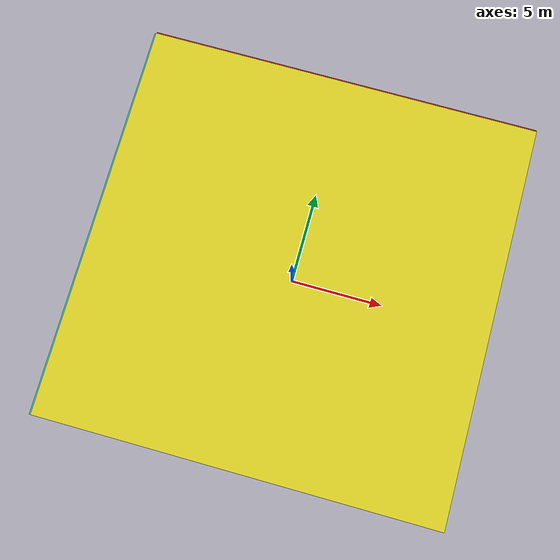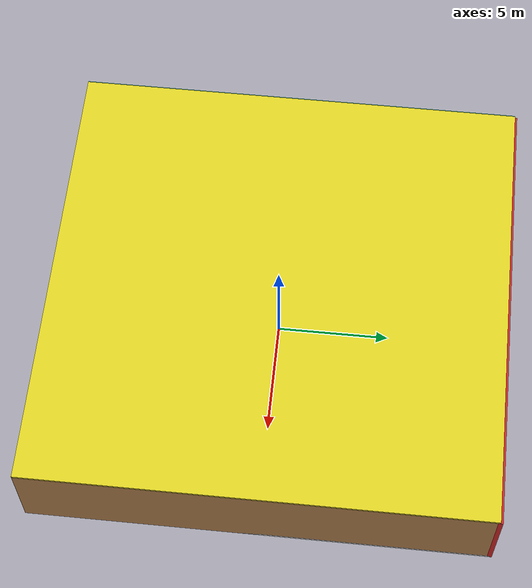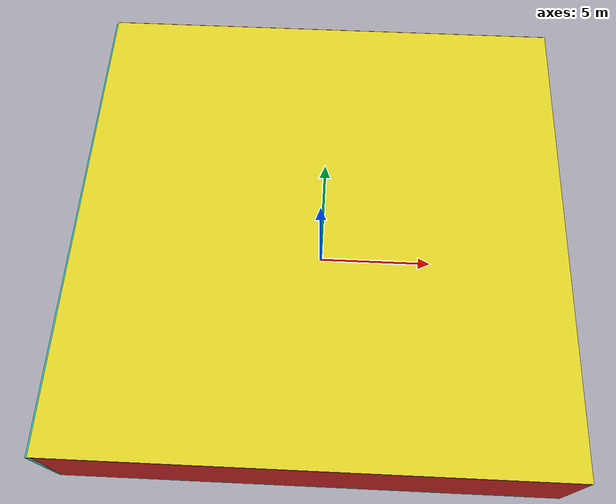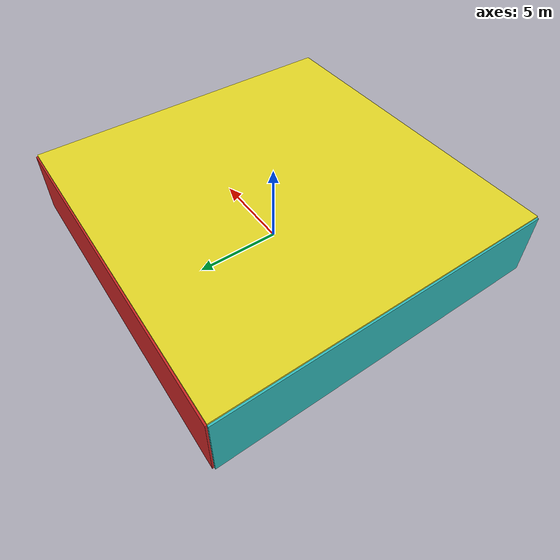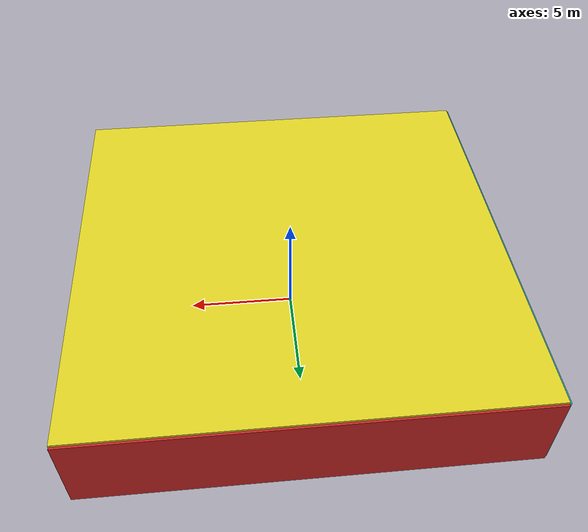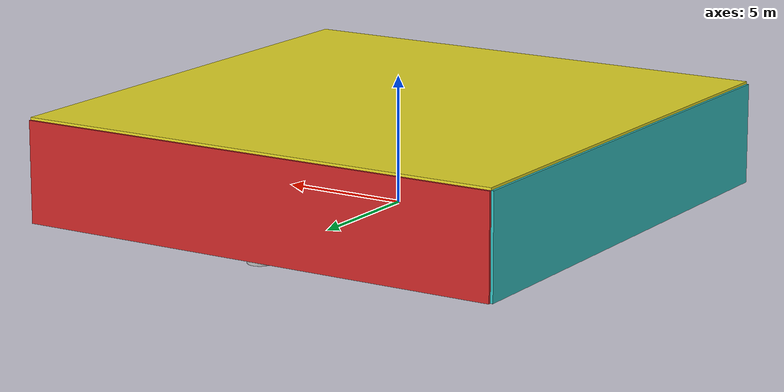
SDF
<sdf version="1.4">
 <world name="default">
  <physics type="ode">
   <max_step_size>0.001</max_step_size>
   <real_time_factor>1</real_time_factor>
   <real_time_update_rate>1000</real_time_update_rate>
   <gravity>0 0 -9.8</gravity>
  </physics>
  <scene><ambient>0.4 0.4 0.4 1</ambient><background>0.7 0.7 0.7 1</background><shadows>1</shadows></scene>
  <model name="Surrounding">
   <static>1</static>
   <link name="Ceiling">
    <collision name="Ceiling_Collision"><geometry><box><size>20 20 0.1</size></box></geometry></collision>
    <visual name="Ceiling_Visual">
     <geometry><box><size>20 20 0.1</size></box></geometry>
     <material>
      <script><uri>file://media/materials/scripts/gazebo.material</uri><name>Gazebo/Yellow</name></script>
     </material>
    </visual>
    <pose>0 0 4.05 0 0 0</pose>
   </link>
   <link name="Wall_South">
    <collision name="Wall_South_Collision">
     <geometry><box><size>20 0 4</size></box></geometry>
     <pose>0 0 2 0 -0 0</pose>
    </collision>
    <visual name="Wall_South_Visual">
     <pose>0 0 2 0 -0 0</pose>
     <geometry><box><size>20 0 4</size></box></geometry>
     <material>
      <script><uri>file://media/materials/scripts/gazebo.material</uri><name>Gazebo/Red</name></script>
     </material>
    </visual>
    <velocity_decay><linear>0</linear><angular>0</angular></velocity_decay>
    <pose>0 -10 0 0 -0 0</pose>
   </link>
   <link name="Wall_East">
    <collision name="Wall_21_Collision">
     <geometry><box><size>20 0 4</size></box></geometry>
     <pose>0 0 2 0 -0 0</pose>
    </collision>
    <visual name="Wall_21_Visual">
     <pose>0 0 2 0 -0 0</pose>
     <geometry><box><size>20 0 4</size></box></geometry>
     <material>
      <script><uri>file://media/materials/scripts/gazebo.material</uri><name>Gazebo/WoodFloor</name></script>
     </material>
    </visual>
    <velocity_decay><linear>0</linear><angular>0</angular></velocity_decay>
    <pose>10 0 0 0 -0 1.5708</pose>
   </link>
   <link name="Wall_North">
    <collision name="Wall_22_Collision">
     <geometry><box><size>20 0.2 4</size></box></geometry>
     <pose>0 0 2 0 -0 0</pose>
    </collision>
    <visual name="Wall_22_Visual">
     <pose>0 0 2 0 -0 0</pose>
     <geometry><box><size>20 0.2 4</size></box></geometry>
     <material>
      <script><uri>file://media/materials/scripts/gazebo.material</uri><name>Gazebo/Red</name></script>
     </material>
    </visual>
    <velocity_decay><linear>0</linear><angular>0</angular></velocity_decay>
    <pose>0 10 0 0 -0 0</pose>
   </link>
   <link name="Wall_West">
    <collision name="Wall_23_Collision">
     <geometry><box><size>20 0.2 4</size></box></geometry>
     <pose>0 0 2 0 -0 0</pose>
    </collision>
    <visual name="Wall_23_Visual">
     <pose>0 0 2 0 -0 0</pose>
     <geometry><box><size>20 0.2 4</size></box></geometry>
     <material>
      <script>
       <uri>file://media/materials/scripts/gazebo.material</uri>
       <name>Gazebo/TurquoiseGlowOutline</name>
      </script>
     </material>
    </visual>
    <velocity_decay><linear>0</linear><angular>0</angular></velocity_decay>
    <pose>-10 0 0 0 0 -1.5708</pose>
   </link>
   <link name="Ground_link">
    <collision name="collision">
     <pose>0 0 .05 0 -0 0</pose>
     <geometry><box><size>20 20 0.1</size></box></geometry>
    </collision>
    <visual name="visual">
     <pose>0 0 .05 0 -0 0</pose>
     <geometry><box><size>20 20 0.1</size></box></geometry>
     <material>
      <script><uri>file://media/materials/scripts/gazebo.material</uri><name>Gazebo/WhiteGlow</name></script>
     </material>
    </visual>
   </link>
   <static>1</static>
  </model>
  <spherical_coordinates>
   <surface_model>EARTH_WGS84</surface_model>
   <latitude_deg>0</latitude_deg>
   <longitude_deg>0</longitude_deg>
   <elevation>0</elevation>
   <heading_deg>0</heading_deg>
  </spherical_coordinates>
  <light name="lightball_0" type="diffuse">
   <diffuse>0.8 0.8 0.8 1</diffuse>
   <specular>0.2 0.2 0.2 1</specular>
   <attenuation>
    <range>100</range>
    <constant>0.7</constant>
    <linear>0.01</linear>
    <quadratic>0.001</quadratic>
   </attenuation>
   <direction>-0.5 0.1 -0.9</direction>
   <pose>-1.59557335642 7.66441475572 3.23732630202 0 0 0</pose>
  </light>
  <light name="lightball_1" type="diffuse">
   <diffuse>0.8 0.8 0.8 1</diffuse>
   <specular>0.2 0.2 0.2 1</specular>
   <attenuation>
    <range>100</range>
    <constant>0.7</constant>
    <linear>0.01</linear>
    <quadratic>0.001</quadratic>
   </attenuation>
   <direction>-0.5 0.1 -0.9</direction>
   <pose>0.718485458176 7.52692483345 2.63551763962 0 0 0</pose>
  </light>
  <light name="lightball_2" type="diffuse">
   <diffuse>0.8 0.8 0.8 1</diffuse>
   <specular>0.2 0.2 0.2 1</specular>
   <attenuation>
    <range>100</range>
    <constant>0.7</constant>
    <linear>0.01</linear>
    <quadratic>0.001</quadratic>
   </attenuation>
   <direction>-0.5 0.1 -0.9</direction>
   <pose>6.55870975963 9.4056015113 1.38016267597 0 0 0</pose>
  </light>
  <light name="lightball_3" type="diffuse">
   <diffuse>0.8 0.8 0.8 1</diffuse>
   <specular>0.2 0.2 0.2 1</specular>
   <attenuation>
    <range>100</range>
    <constant>0.7</constant>
    <linear>0.01</linear>
    <quadratic>0.001</quadratic>
   </attenuation>
   <direction>-0.5 0.1 -0.9</direction>
   <pose>-9.94366450045 -3.50051699491 3.38870884106 0 0 0</pose>
  </light>
  <light name="lightball_4" type="diffuse">
   <diffuse>0.8 0.8 0.8 1</diffuse>
   <specular>0.2 0.2 0.2 1</specular>
   <attenuation>
    <range>100</range>
    <constant>0.7</constant>
    <linear>0.01</linear>
    <quadratic>0.001</quadratic>
   </attenuation>
   <direction>-0.5 0.1 -0.9</direction>
   <pose>2.5499889625 3.0130521896 0.826024151192 0 0 0</pose>
  </light>
  <light name="lightball_5" type="diffuse">
   <diffuse>0.8 0.8 0.8 1</diffuse>
   <specular>0.2 0.2 0.2 1</specular>
   <attenuation>
    <range>100</range>
    <constant>0.7</constant>
    <linear>0.01</linear>
    <quadratic>0.001</quadratic>
   </attenuation>
   <direction>-0.5 0.1 -0.9</direction>
   <pose>7.13287675149 8.88391257537 0.804283072899 0 0 0</pose>
  </light>
  <light name="lightball_6" type="diffuse">
   <diffuse>0.8 0.8 0.8 1</diffuse>
   <specular>0.2 0.2 0.2 1</specular>
   <attenuation>
    <range>100</range>
    <constant>0.7</constant>
    <linear>0.01</linear>
    <quadratic>0.001</quadratic>
   </attenuation>
   <direction>-0.5 0.1 -0.9</direction>
   <pose>-5.72597765958 -2.94797365429 0.51666448354 0 0 0</pose>
  </light>
  <light name="lightball_7" type="diffuse">
   <diffuse>0.8 0.8 0.8 1</diffuse>
   <specular>0.2 0.2 0.2 1</specular>
   <attenuation>
    <range>100</range>
    <constant>0.7</constant>
    <linear>0.01</linear>
    <quadratic>0.001</quadratic>
   </attenuation>
   <direction>-0.5 0.1 -0.9</direction>
   <pose>-6.78781842439 0.103321060326 3.1679788932 0 0 0</pose>
  </light>
  <light name="lightball_8" type="diffuse">
   <diffuse>0.8 0.8 0.8 1</diffuse>
   <specular>0.2 0.2 0.2 1</specular>
   <attenuation>
    <range>100</range>
    <constant>0.7</constant>
    <linear>0.01</linear>
    <quadratic>0.001</quadratic>
   </attenuation>
   <direction>-0.5 0.1 -0.9</direction>
   <pose>-9.65188016689 -0.935692220796 3.64169507213 0 0 0</pose>
  </light>
  <light name="lightball_9" type="diffuse">
   <diffuse>0.8 0.8 0.8 1</diffuse>
   <specular>0.2 0.2 0.2 1</specular>
   <attenuation>
    <range>100</range>
    <constant>0.7</constant>
    <linear>0.01</linear>
    <quadratic>0.001</quadratic>
   </attenuation>
   <direction>-0.5 0.1 -0.9</direction>
   <pose>-7.77138435425 7.2310936023 2.89623398305 0 0 0</pose>
  </light>
  <include>
   <uri>model://textured_shapes</uri>
   <pose>-4.40949171823 -1.48796203193 0 0 0 0.833498975153</pose>
  </include>
  <include>
   <uri>model://robocup_3Dsim_goal</uri>
   <pose>-5.16844559516 5.23876983386 0 0 0 0.00283265456797</pose>
  </include>
  <include>
   <uri>model://textured_shapes</uri>
   <pose>-1.24990370129 -7.58965670889 0 0 0 1.42972856395</pose>
  </include>
  <include><uri>model://table</uri><pose>2.25247098357 5.12178960079 0 0 0 1.44032400962</pose></include>
  <include>
   <uri>model://textured_shapes</uri>
   <pose>1.81790998052 7.64636143404 0 0 0 0.940406548529</pose>
  </include>
  <include>
   <uri>model://construction_cone</uri>
   <pose>4.09640154422 4.1774561891 0 0 0 1.43711247391</pose>
  </include>
  <include>
   <uri>model://robocup_3Dsim_goal</uri>
   <pose>4.63404703563 7.48692004514 0 0 0 0.0363415239429</pose>
  </include>
 </world>
</sdf>

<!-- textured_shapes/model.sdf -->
<sdf version="1.6">
  <model name="textured_shapes">
    <pose>0 0 0.5 0 0 0</pose>
    <link name="box">
      <pose>0 -1.5 0 0 0 0</pose>
      <collision name="collision">
        <geometry>
          <box>
            <size>1 1 1</size>
          </box>
        </geometry>
      </collision>
      <visual name="visual">
        <geometry>
          <box>
            <size>1 1 1</size>
          </box>
        </geometry>
        <material>
          <script>
            <uri>model://../model_source/models/textured_shapes/materials/scripts</uri>
            <uri>model://../model_source/models/textured_shapes/materials/textures</uri>
            <name>TexturedShape/Squares</name>
          </script>
        </material>
      </visual>
    </link>
    <link name="sphere">
      <collision name="collision">
        <geometry>
          <sphere>
            <radius>0.5</radius>
          </sphere>
        </geometry>
      </collision>
      <visual name="visual">
        <geometry>
          <sphere>
            <radius>0.5</radius>
          </sphere>
        </geometry>
        <material>
          <script>
            <uri>model://../model_source/models/textured_shapes/materials/scripts</uri>
            <uri>model://../model_source/models/textured_shapes/materials/textures</uri>
            <name>TexturedShape/Squares</name>
          </script>
        </material>
      </visual>
    </link>
    <link name="cylinder">
      <pose>0 1.5 0 0 0 0</pose>
      <collision name="collision">
        <geometry>
          <cylinder>
            <radius>0.5</radius>
            <length>1</length>
          </cylinder>
        </geometry>
      </collision>
      <visual name="visual">
        <geometry>
          <cylinder>
            <radius>0.5</radius>
            <length>1</length>
          </cylinder>
        </geometry>
        <material>
          <script>
            <uri>model://../model_source/models/textured_shapes/materials/scripts</uri>
            <uri>model://../model_source/models/textured_shapes/materials/textures</uri>
            <name>TexturedShape/Squares</name>
          </script>
        </material>
      </visual>
    </link>
  </model>
</sdf>

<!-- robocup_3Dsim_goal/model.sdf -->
<sdf version="1.5">
  <model name="robocup_3d_goal">
    <static>true</static>
    <link name="left_post">
      <pose>0 1.05 0.45 0 0 0</pose>
      <collision name="collision">
        <geometry>
          <cylinder>
            <radius>0.05</radius>
            <length>0.9</length>
          </cylinder>
        </geometry>
      </collision>
      <visual name="visual">
        <geometry>
          <cylinder>
            <radius>0.05</radius>
            <length>0.9</length>
          </cylinder>
        </geometry>
        <material>
          <script>
            <uri>file://media/materials/scripts/gazebo.material</uri>
            <name>Gazebo/ZincYellow</name>
          </script>
        </material>
      </visual>
    </link>
    <link name="left_support_horiz_lower">
      <pose>0.30 1.05 0.01 0 0 0</pose>
      <collision name="collision">
        <geometry>
          <box>
            <size>0.50 0.02 0.02</size>
          </box>
        </geometry>
      </collision>
      <visual name="visual">
        <geometry>
          <box>
            <size>0.50 0.02 0.02</size>
          </box>
        </geometry>
        <material>
          <script>
            <uri>file://media/materials/scripts/gazebo.material</uri>
            <name>Gazebo/White</name>
          </script>
        </material>
      </visual>
    </link>
    <link name="left_support_horiz_upper">
      <pose>0.30 1.05 0.79 0 0 0</pose>
      <collision name="collision">
        <geometry>
          <box>
            <size>0.50 0.02 0.02</size>
          </box>
        </geometry>
      </collision>
      <visual name="visual">
        <geometry>
          <box>
            <size>0.50 0.02 0.02</size>
          </box>
        </geometry>
        <material>
          <script>
            <uri>file://media/materials/scripts/gazebo.material</uri>
            <name>Gazebo/White</name>
          </script>
        </material>
      </visual>
    </link>
    <link name="left_support_vertical">
      <pose>0.56 1.05 0.4 0 1.5708 0</pose>
      <collision name="collision">
        <geometry>
          <box>
            <size>0.80 0.02 0.02</size>
          </box>
        </geometry>
      </collision>
      <visual name="visual">
        <geometry>
          <box>
            <size>0.80 0.02 0.02</size>
          </box>
        </geometry>
        <material>
          <script>
            <uri>file://media/materials/scripts/gazebo.material</uri>
            <name>Gazebo/White</name>
          </script>
        </material>
      </visual>
    </link>
    <link name="right_support_horiz_lower">
      <pose>0.30 -1.05 0.01 0 0 0</pose>
      <collision name="collision">
        <geometry>
          <box>
            <size>0.50 0.02 0.02</size>
          </box>
        </geometry>
      </collision>
      <visual name="visual">
        <geometry>
          <box>
            <size>0.50 0.02 0.02</size>
          </box>
        </geometry>
        <material>
          <script>
            <uri>file://media/materials/scripts/gazebo.material</uri>
            <name>Gazebo/White</name>
          </script>
        </material>
      </visual>
    </link>
    <link name="right_support_horiz_upper">
      <pose>0.30 -1.05 0.79 0 0 0</pose>
      <collision name="collision">
        <geometry>
          <box>
            <size>0.50 0.02 0.02</size>
          </box>
        </geometry>
      </collision>
      <visual name="visual">
        <geometry>
          <box>
            <size>0.50 0.02 0.02</size>
          </box>
        </geometry>
        <material>
          <script>
            <uri>file://media/materials/scripts/gazebo.material</uri>
            <name>Gazebo/White</name>
          </script>
        </material>
      </visual>
    </link>
    <link name="right_support_vertical">
      <pose>0.56 -1.05 0.4 0 1.5708 0</pose>
      <collision name="collision">
        <geometry>
          <box>
            <size>0.80 0.02 0.02</size>
          </box>
        </geometry>
      </collision>
      <visual name="visual">
        <geometry>
          <box>
            <size>0.80 0.02 0.02</size>
          </box>
        </geometry>
        <material>
          <script>
            <uri>file://media/materials/scripts/gazebo.material</uri>
            <name>Gazebo/White</name>
          </script>
        </material>
      </visual>
    </link>
    <link name="center_support_horiz_lower">
      <pose>0.56 0 0.01 0 1.5708 0</pose>
      <collision name="collision">
        <geometry>
          <box>
            <size>0.02 2.08 0.02</size>
          </box>
        </geometry>
      </collision>
      <visual name="visual">
        <geometry>
          <box>
            <size>0.02 2.08 0.02</size>
          </box>
        </geometry>
        <material>
          <script>
            <uri>file://media/materials/scripts/gazebo.material</uri>
            <name>Gazebo/White</name>
          </script>
        </material>
      </visual>
    </link>
    <link name="center_support_horiz_upper">
      <pose>0.56 0 0.79 0 1.5708 0</pose>
      <collision name="collision">
        <geometry>
          <box>
            <size>0.02 2.08 0.02</size>
          </box>
        </geometry>
      </collision>
      <visual name="visual">
        <geometry>
          <box>
            <size>0.02 2.08 0.02</size>
          </box>
        </geometry>
        <material>
          <script>
            <uri>file://media/materials/scripts/gazebo.material</uri>
            <name>Gazebo/White</name>
          </script>
        </material>
      </visual>
    </link>
    <link name="right_post">
      <pose>0 -1.05 0.45 0 0 0</pose>
      <collision name="collision">
        <geometry>
          <cylinder>
            <radius>0.05</radius>
            <length>0.9</length>
          </cylinder>
        </geometry>
      </collision>
      <visual name="visual">
        <geometry>
          <cylinder>
            <radius>0.05</radius>
            <length>0.9</length>
          </cylinder>
        </geometry>
        <material>
          <script>
            <uri>file://media/materials/scripts/gazebo.material</uri>
            <name>Gazebo/ZincYellow</name>
          </script>
        </material>
      </visual>
    </link>
    <link name="crossbar">
      <pose>0 0 0.85 1.57 1.57 0</pose>
      <collision name="collision">
        <geometry>
          <cylinder>
            <radius>0.05</radius>
            <length>2.0</length>
          </cylinder>
        </geometry>
      </collision>
      <visual name="visual">
        <geometry>
          <cylinder>
            <radius>0.05</radius>
            <length>2.0</length>
          </cylinder>
        </geometry>
        <material>
          <script>
            <uri>file://media/materials/scripts/gazebo.material</uri>
            <name>Gazebo/ZincYellow</name>
          </script>
        </material>
      </visual>
    </link>
    <link name="center_net">
      <pose>0.56 0 0.40 0 0 0</pose>
      <collision name="collision">
        <geometry>
          <box>
            <size>0.01 2.1 0.80</size>
          </box>
        </geometry>
      </collision>
      <visual name="visual">
        <geometry>
          <box>
            <size>0.01 2.1 0.80</size>
          </box>
        </geometry>
        <material>
          <script>
            <uri>model://../model_source/models/robocup09_spl_field/materials/scripts/</uri>
            <uri>model://../model_source/models/robocup09_spl_field/materials/textures/</uri>
            <name>RoboCup/Net</name>
          </script>
        </material>
      </visual>
    </link>
    <link name="left_net">
      <pose>0.30 1.05 0.40 0 0 0</pose>
      <collision name="collision">
        <geometry>
          <box>
            <size>0.50 0.01 0.76</size>
          </box>
        </geometry>
      </collision>
      <visual name="visual">
        <geometry>
          <box>
            <size>0.50 0.01 0.76</size>
          </box>
        </geometry>
        <material>
          <script>
            <uri>model://../model_source/models/robocup09_spl_field/materials/scripts/</uri>
            <uri>model://../model_source/models/robocup09_spl_field/materials/textures/</uri>
            <name>RoboCup/Net</name>
          </script>
        </material>
      </visual>
    </link>
    <link name="right_net">
      <pose>0.30 -1.05 0.40 0 0 0</pose>
      <collision name="collision">
        <geometry>
          <box>
            <size>0.50 0.01 0.76</size>
          </box>
        </geometry>
      </collision>
      <visual name="visual">
        <geometry>
          <box>
            <size>0.50 0.01 0.76</size>
          </box>
        </geometry>
        <material>
          <script>
            <uri>model://../model_source/models/robocup09_spl_field/materials/scripts/</uri>
            <uri>model://../model_source/models/robocup09_spl_field/materials/textures/</uri>
            <name>RoboCup/Net</name>
          </script>
        </material>
      </visual>
    </link>
  </model>
</sdf>

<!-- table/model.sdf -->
<sdf version="1.5">
  <model name="table">
    <static>true</static>
    <link name="link">
      <collision name="surface">
        <pose>0 0 1.0 0 0 0</pose>
        <geometry>
          <box>
            <size>1.5 0.8 0.03</size>
          </box>
        </geometry>
        <surface>
          <friction>
            <ode>
              <mu>0.6</mu>
              <mu2>0.6</mu2>
            </ode>
          </friction>
        </surface>
      </collision>
      <visual name="visual1">
        <pose>0 0 1.0 0 0 0</pose>
        <geometry>
          <box>
            <size>1.5 0.8 0.03</size>
          </box>
        </geometry>
        <material>
          <script>
            <uri>model://media/materials/scripts/gazebo.material</uri>
            <name>Gazebo/Wood</name>
          </script>
        </material>
      </visual>
      <collision name="front_left_leg">
        <pose>0.68 0.38 0.5 0 0 0</pose>
        <geometry>
          <cylinder>
            <radius>0.02</radius>
            <length>1.0</length>
          </cylinder>
        </geometry>
      </collision>
      <visual name="front_left_leg">
        <pose>0.68 0.38 0.5 0 0 0</pose>
        <geometry>
          <cylinder>
            <radius>0.02</radius>
            <length>1.0</length>
          </cylinder>
        </geometry>
        <material>
          <script>
            <uri>model://media/materials/scripts/gazebo.material</uri>
            <name>Gazebo/Grey</name>
          </script>
        </material>
      </visual>
      <collision name="front_right_leg">
        <pose>0.68 -0.38 0.5 0 0 0</pose>
        <geometry>
          <cylinder>
            <radius>0.02</radius>
            <length>1.0</length>
          </cylinder>
        </geometry>
      </collision>
      <visual name="front_right_leg">
        <pose>0.68 -0.38 0.5 0 0 0</pose>
        <geometry>
          <cylinder>
            <radius>0.02</radius>
            <length>1.0</length>
          </cylinder>
        </geometry>
        <material>
          <script>
            <uri>model://media/materials/scripts/gazebo.material</uri>
            <name>Gazebo/Grey</name>
          </script>
        </material>
      </visual>
      <collision name="back_right_leg">
        <pose>-0.68 -0.38 0.5 0 0 0</pose>
        <geometry>
          <cylinder>
            <radius>0.02</radius>
            <length>1.0</length>
          </cylinder>
        </geometry>
      </collision>
      <visual name="back_right_leg">
        <pose>-0.68 -0.38 0.5 0 0 0</pose>
        <geometry>
          <cylinder>
            <radius>0.02</radius>
            <length>1.0</length>
          </cylinder>
        </geometry>
        <material>
          <script>
            <uri>model://media/materials/scripts/gazebo.material</uri>
            <name>Gazebo/Grey</name>
          </script>
        </material>
      </visual>
      <collision name="back_left_leg">
        <pose>-0.68 0.38 0.5 0 0 0</pose>
        <geometry>
          <cylinder>
            <radius>0.02</radius>
            <length>1.0</length>
          </cylinder>
        </geometry>
      </collision>
      <visual name="back_left_leg">
        <pose>-0.68 0.38 0.5 0 0 0</pose>
        <geometry>
          <cylinder>
            <radius>0.02</radius>
            <length>1.0</length>
          </cylinder>
        </geometry>
        <material>
          <script>
            <uri>model://media/materials/scripts/gazebo.material</uri>
            <name>Gazebo/Grey</name>
          </script>
        </material>
      </visual>
    </link>
  </model>
</sdf>

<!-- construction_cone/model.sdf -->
<sdf version="1.5">
  <model name="Construction Cone">
    <link name="link">
      <collision name="collision">
        <geometry>
          <mesh>
            <scale>10 10 10</scale>
            <uri>file://isr-testbed/construction_cone/meshes/construction_cone.dae</uri>
          </mesh>
        </geometry>
      </collision>
      <visual name="visual">
        <geometry>
          <mesh>
            <scale>10 10 10</scale>
            <uri>file://isr-testbed/construction_cone/meshes/construction_cone.dae</uri>
          </mesh>
        </geometry>
      </visual>
    </link>
  </model>
</sdf>
